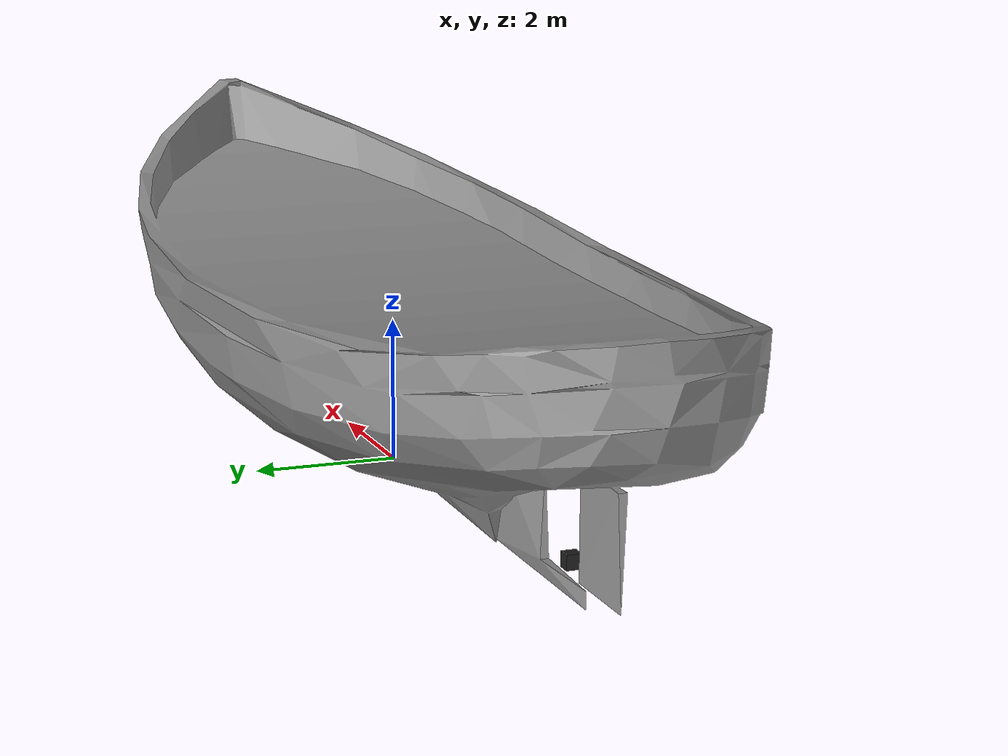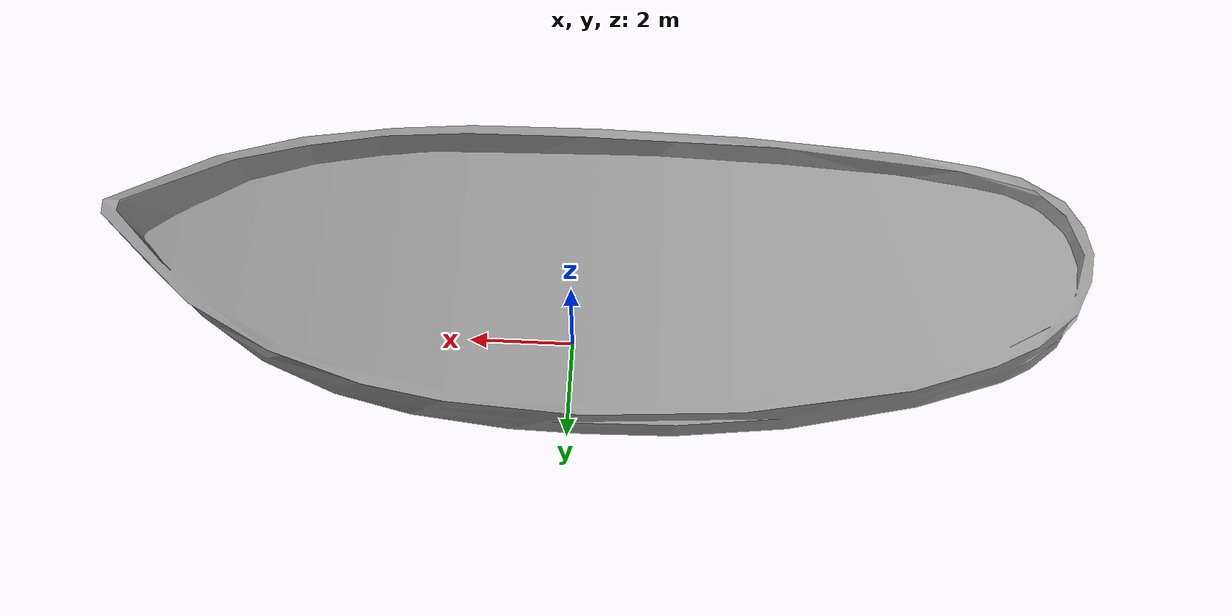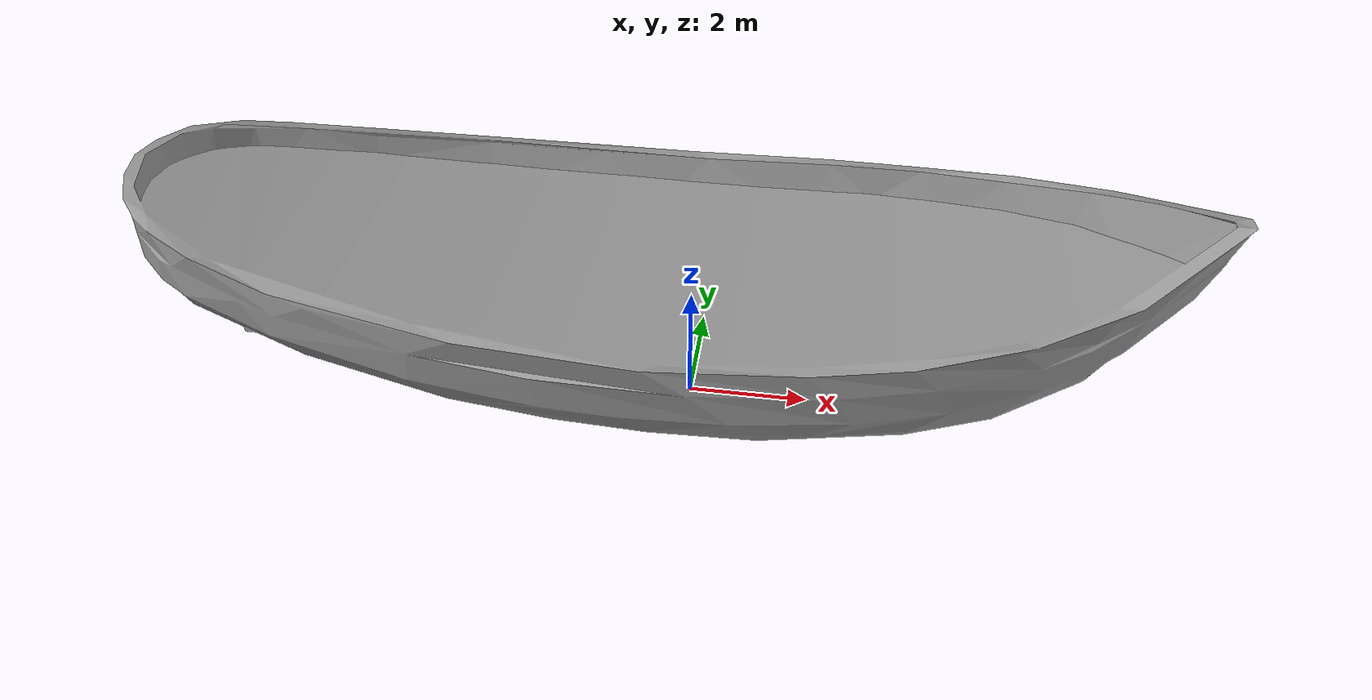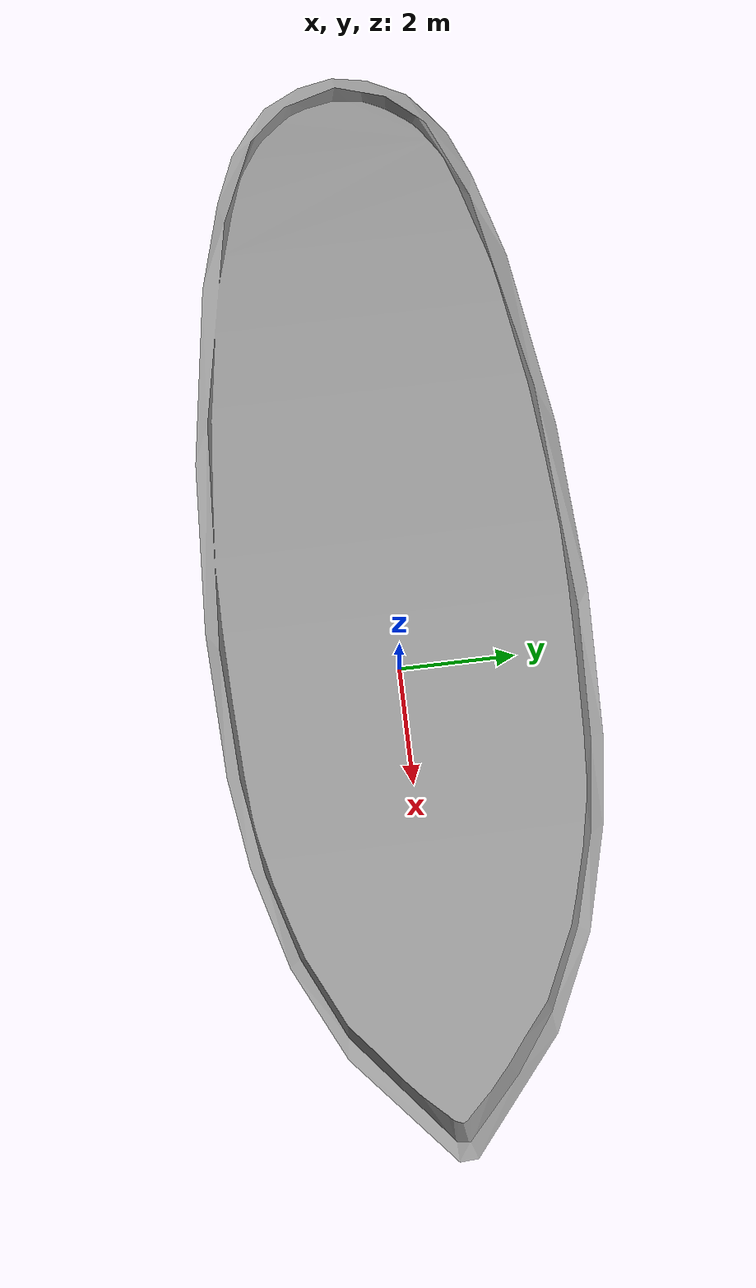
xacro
<?xml version="1.0" ?>
<robot name="tug_boat" xmlns:xacro="http://www.ros.org/wiki/xacro">

  <!-- Math constants -->
  <xacro:property name="math_pi" value="3.141592653589793" />

  <!-- Math macros -->
  <xacro:macro name="box_inertial" params="mass x y z">
    <inertial>
      <mass value="${mass}" />
      <inertia
        ixx="${mass * (y * y + z * z) / 12.0}" ixy="0.0" ixz="0.0"
        iyy="${mass * (z * z + x * x) / 12.0}" iyz="0.0"
        izz="${mass * (x * x + y * y) / 12.0}" />
    </inertial>
  </xacro:macro>

  <!-- Constants for robot dimensions -->
  <xacro:property name="hull_mass" value="30000.0" />
  <xacro:property name="hull_loa" value="17.4" />
  <xacro:property name="hull_woa" value="6.1" />
  <xacro:property name="hull_doa" value="4.2" />
  <xacro:property name="thruster_mass" value="61" />
  <xacro:property name="thruster_size" value="0.2" />

  <!-- Import Gazebo elements -->
  <xacro:include filename="$(find tug_boat_description)/urdf/tug_boat.gazebo" />

  <!-- Base link (main hull) -->
  <link name="base_link">
    <visual>
      <geometry>
        <mesh filename="package://tug_boat_description/meshes/tug_boat.stl"/>
      </geometry>
    </visual>

    <collision>
      <geometry>
        <mesh filename="package://tug_boat_description/meshes/tug_boat_collision.stl"/>
      </geometry>
    </collision>

    <xacro:box_inertial mass="${hull_mass}" x="${hull_loa}" y="${hull_loa}" z="${hull_doa}" />
  </link>

  <!-- Thruster link -->
  <link name="thruster_link">
    <visual>
      <geometry>
        <box size="${thruster_size} ${thruster_size} ${thruster_size}"/>
      </geometry>
    </visual>

    <collision>
      <geometry>
        <box size="${thruster_size} ${thruster_size} ${thruster_size}"/>
      </geometry>
    </collision>

    <xacro:box_inertial mass="${thruster_mass}" x="${thruster_size}" y="${thruster_size}" z="${thruster_size}" />
  </link>

  <joint name="thruster_joint" type="fixed">
    <axis xyz="0 1 0" />
    <origin xyz="-6.5 0 0.5" rpy="0 0 0"/>
    <parent link="base_link"/>
    <child link="thruster_link"/>
  </joint>

</robot>
